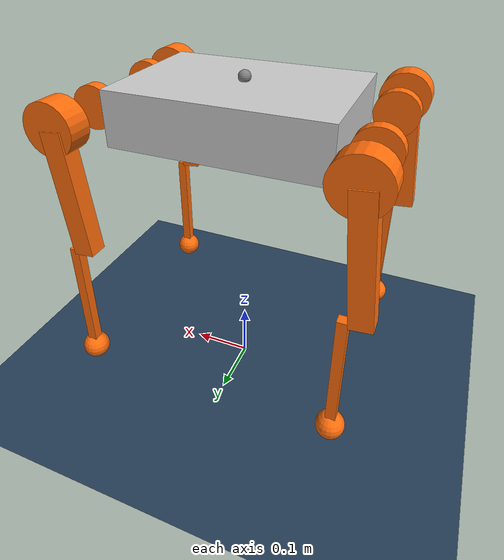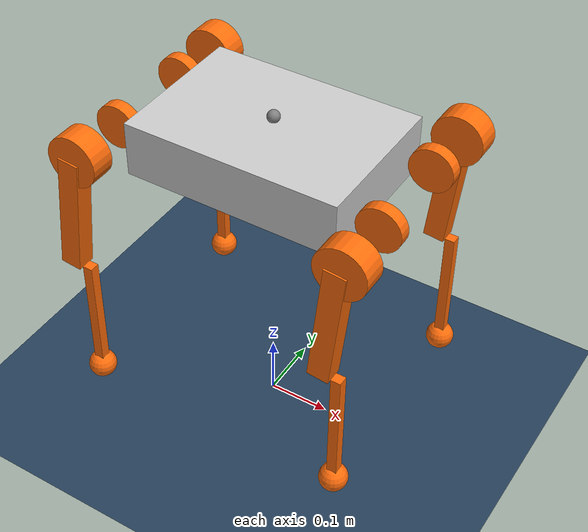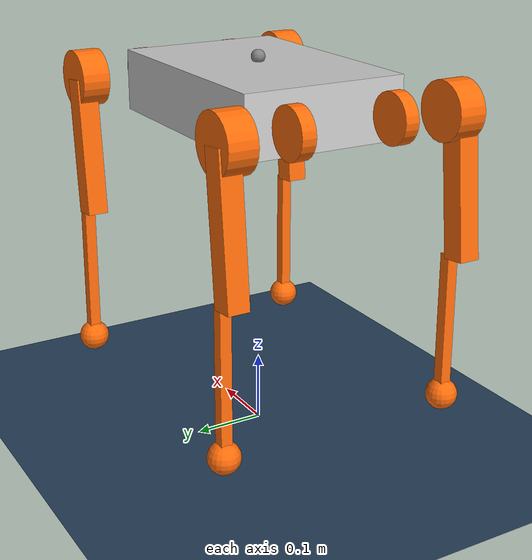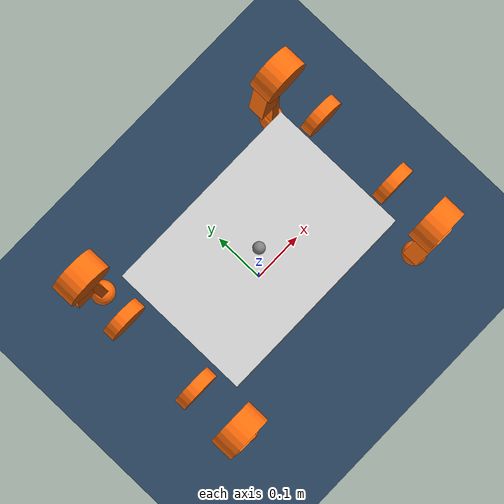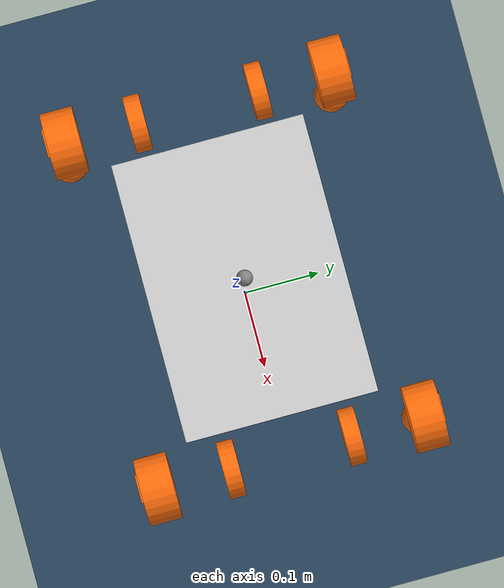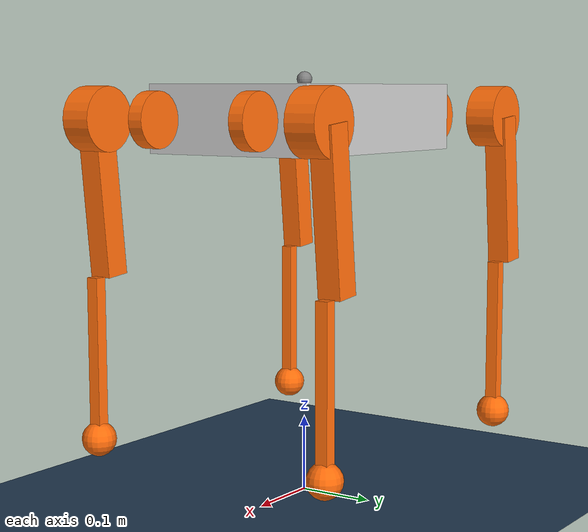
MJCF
<mujoco model="quadruped_robot">
      <compiler angle="radian" inertiafromgeom="auto"/>

      <!-- 优化的仿真参数 -->
      <option timestep="0.005" iterations="50" solver="Newton" tolerance="1e-10"/>

      <!-- 默认参数设置 -->
      <default>
            <joint damping="0.1" frictionloss="0.01"/>
            <geom friction="0.8 0.02 0.01" margin="0.001" gap="0.0"/>
            <motor ctrllimited="true" ctrlrange="-33.5 33.5"/>
      </default>

      <!-- 资源 -->
      <asset>
            <texture name="grid" type="2d" builtin="checker" rgb1=".1 .2 .3" rgb2=".2 .3 .4" width="300" height="300"/>
            <material name="grid" texture="grid" texrepeat="8 8" reflectance=".2"/>
      </asset>

      <worldbody>
            <!-- 地面 -->
            <geom name="ground" size="10 10 0.1" type="plane" material="grid"/>
            <light pos="0 0 3" dir="0 0 -1"/>

            <!-- 机器人主体 -->
            <body name="base" pos="0 0 0.5">
                  <site name="imu_site" pos="0 0 0.05" size="0.01"/>
                  <!-- 浮动基座 -->
                  <freejoint name="floating_base"/>
                  <!-- Third-person chase camera rigidly attached to base -->
                  <camera name="chase_cam" pos="-2 0 2" xyaxes="0 -1 0 1 0 1"/>

                  <!-- 主体几何形状（MuJoCo将自动计算惯性） -->
                  <geom name="trunk" size="0.171 0.1185 0.0435" type="box" rgba="0.8 0.8 0.8 1" mass="4.287"/>

                  <!-- 前左腿 (FL) -->
                  <body name="FL_hip" pos="0.215 0.075 0">
                        <joint name="FL_hip_joint" pos="0 0 0" axis="1 0 0" range="-0.5 0.5" damping="0.1" frictionloss="0.01"/>
                        <geom name="FL_hip_geom" size="0.035 0.01" quat="0.707107 0.707107 0 0" type="cylinder" rgba="1 0.423529 0.0392157 1" mass="0.706"/>

                        <body name="FL_thigh" pos="0 0.09914 0">
                              <joint name="FL_thigh_joint" pos="0 0 0" axis="0 1 0" range="-0.10 3.10" damping="0.15" frictionloss="0.01"/>
                              <geom name="FL_thigh_geom1" size="0.1 0.015 0.017" pos="-0.015 0 -0.1" quat="0.670882 0 0.741564 0" type="box" rgba="1 0.423529 0.0392157 1" mass="0.919"/>
                              <geom name="FL_thigh_geom2" size="0.041 0.02" pos="0 -0.008 0" quat="0.707107 0.707107 0 0" type="cylinder" rgba="1 0.423529 0.0392157 1" mass="0.296"/>

                              <body name="FL_calf" pos="0 0 -0.2">
                                    <joint name="FL_calf_joint" pos="0 0 0" axis="0 1 0" range="-2.6965336943312392 -0.9162978572970231" damping="0.1" frictionloss="0.01"/>
                                    <geom name="FL_calf_geom" size="0.1051 0.008 0.008" pos="0 0 -0.1051" quat="0.707107 0 0.707107 0" type="box" rgba="1 0.423529 0.0392157 1" mass="0.175"/>
                                    <geom name="FL_foot" size="0.0225" pos="0 0 -0.2102" rgba="1 0.423529 0.0392157 1" friction="1.2 0.05 0.01" mass="0.01"/>
                              </body>
                        </body>
                  </body>

                  <!-- 后左腿 (RL) -->
                  <body name="RL_hip" pos="-0.215 0.075 0">
                        <joint name="RL_hip_joint" pos="0 0 0" axis="1 0 0" range="-0.5 0.5" damping="0.1" frictionloss="0.01"/>
                        <geom name="RL_hip_geom" size="0.035 0.01" quat="0.707107 0.707107 0 0" type="cylinder" rgba="1 0.423529 0.0392157 1" mass="0.706"/>

                        <body name="RL_thigh" pos="0 0.09914 0">
                              <joint name="RL_thigh_joint" pos="0 0 0" axis="0 1 0" range="-0.10 3.10" damping="0.15" frictionloss="0.01"/>
                              <geom name="RL_thigh_geom1" size="0.1 0.015 0.017" pos="-0.015 0 -0.1" quat="0.670882 0 0.741564 0" type="box" rgba="1 0.423529 0.0392157 1" mass="0.919"/>
                              <geom name="RL_thigh_geom2" size="0.041 0.02" pos="0 -0.008 0" quat="0.707107 0.707107 0 0" type="cylinder" rgba="1 0.423529 0.0392157 1" mass="0.296"/>

                              <body name="RL_calf" pos="0 0 -0.2">
                                    <joint name="RL_calf_joint" pos="0 0 0" axis="0 1 0" range="-2.6965336943312392 -0.9162978572970231" damping="0.1" frictionloss="0.01"/>
                                    <geom name="RL_calf_geom" size="0.1051 0.008 0.008" pos="0 0 -0.1051" quat="0.707107 0 0.707107 0" type="box" rgba="1 0.423529 0.0392157 1" mass="0.175"/>
                                    <geom name="RL_foot" size="0.0225" pos="0 0 -0.2102" rgba="1 0.423529 0.0392157 1" friction="1.2 0.05 0.01" mass="0.01"/>
                              </body>
                        </body>
                  </body>

                  <!-- 前右腿 (FR) -->
                  <body name="FR_hip" pos="0.215 -0.075 0">
                        <joint name="FR_hip_joint" pos="0 0 0" axis="1 0 0" range="-0.5 0.5" damping="0.1" frictionloss="0.01"/>
                        <geom name="FR_hip_geom" size="0.035 0.01" quat="0.707107 0.707107 0 0" type="cylinder" rgba="1 0.423529 0.0392157 1" mass="0.706"/>

                        <body name="FR_thigh" pos="0 -0.09914 0">
                              <joint name="FR_thigh_joint" pos="0 0 0" axis="0 1 0" range="-0.10 3.10" damping="0.15" frictionloss="0.01"/>
                              <geom name="FR_thigh_geom1" size="0.1 0.015 0.017" pos="-0.015 0 -0.1" quat="0.670882 0 0.741564 0" type="box" rgba="1 0.423529 0.0392157 1" mass="0.919"/>
                              <geom name="FR_thigh_geom2" size="0.041 0.02" pos="0 0.008 0" quat="0.707107 0.707107 0 0" type="cylinder" rgba="1 0.423529 0.0392157 1" mass="0.296"/>

                              <body name="FR_calf" pos="0 0 -0.2">
                                    <joint name="FR_calf_joint" pos="0 0 0" axis="0 1 0" range="-2.6965336943312392 -0.9162978572970231" damping="0.1" frictionloss="0.01"/>
                                    <geom name="FR_calf_geom" size="0.1051 0.008 0.008" pos="0 0 -0.1051" quat="0.707107 0 0.707107 0" type="box" rgba="1 0.423529 0.0392157 1" mass="0.175"/>
                                    <geom name="FR_foot" size="0.0225" pos="0 0 -0.2102" rgba="1 0.423529 0.0392157 1" friction="1.2 0.05 0.01" mass="0.01"/>
                              </body>
                        </body>
                  </body>

                  <!-- 后右腿 (RR) -->
                  <body name="RR_hip" pos="-0.215 -0.075 0">
                        <joint name="RR_hip_joint" pos="0 0 0" axis="1 0 0" range="-0.5 0.5" damping="0.1" frictionloss="0.01"/>
                        <geom name="RR_hip_geom" size="0.035 0.01" quat="0.707107 0.707107 0 0" type="cylinder" rgba="1 0.423529 0.0392157 1" mass="0.706"/>

                        <body name="RR_thigh" pos="0 -0.09914 0">
                              <joint name="RR_thigh_joint" pos="0 0 0" axis="0 1 0" range="-0.10 3.10" damping="0.15" frictionloss="0.01"/>
                              <geom name="RR_thigh_geom1" size="0.1 0.015 0.017" pos="-0.015 0 -0.1" quat="0.670882 0 0.741564 0" type="box" rgba="1 0.423529 0.0392157 1" mass="0.919"/>
                              <geom name="RR_thigh_geom2" size="0.041 0.02" pos="0 0.008 0" quat="0.707107 0.707107 0 0" type="cylinder" rgba="1 0.423529 0.0392157 1" mass="0.296"/>

                              <body name="RR_calf" pos="0 0 -0.2">
                                    <joint name="RR_calf_joint" pos="0 0 0" axis="0 1 0" range="-2.6965336943312392 -0.9162978572970231" damping="0.1" frictionloss="0.01"/>
                                    <geom name="RR_calf_geom" size="0.1051 0.008 0.008" pos="0 0 -0.1051" quat="0.707107 0 0.707107 0" type="box" rgba="1 0.423529 0.0392157 1" mass="0.175"/>
                                    <geom name="RR_foot" size="0.0225" pos="0 0 -0.2102" rgba="1 0.423529 0.0392157 1" friction="1.2 0.05 0.01" mass="0.01"/>
                              </body>
                        </body>
                  </body>
            </body>
      </worldbody>

      <!-- 电机驱动器 -->
      <actuator>
            <!-- 前左腿电机 -->
            <motor name="FL_hip_motor" joint="FL_hip_joint" gear="1"/>
            <motor name="FL_thigh_motor" joint="FL_thigh_joint" gear="1"/>
            <motor name="FL_calf_motor" joint="FL_calf_joint" gear="1"/>

            <!-- 后左腿电机 -->
            <motor name="RL_hip_motor" joint="RL_hip_joint" gear="1"/>
            <motor name="RL_thigh_motor" joint="RL_thigh_joint" gear="1"/>
            <motor name="RL_calf_motor" joint="RL_calf_joint" gear="1"/>

            <!-- 前右腿电机 -->
            <motor name="FR_hip_motor" joint="FR_hip_joint" gear="1"/>
            <motor name="FR_thigh_motor" joint="FR_thigh_joint" gear="1"/>
            <motor name="FR_calf_motor" joint="FR_calf_joint" gear="1"/>

            <!-- 后右腿电机 -->
            <motor name="RR_hip_motor" joint="RR_hip_joint" gear="1"/>
            <motor name="RR_thigh_motor" joint="RR_thigh_joint" gear="1"/>
            <motor name="RR_calf_motor" joint="RR_calf_joint" gear="1"/>
      </actuator>

      <sensor>
            <!-- IMU传感器 - 必须通过site定位 -->
            <!-- 加速度计 - 测量躯干坐标系下的加速度（包含重力） -->
            <accelerometer name="base_accelerometer" site="imu_site"/>
            <!-- 陀螺仪 - 测量躯干坐标系下的角速度 -->
            <gyro name="base_gyro" site="imu_site"/>
            <!-- 躯干线速度传感器 - 用于调试和验证 -->
            <velocimeter name="base_velocimeter" site="imu_site"/>
      </sensor>
</mujoco>
